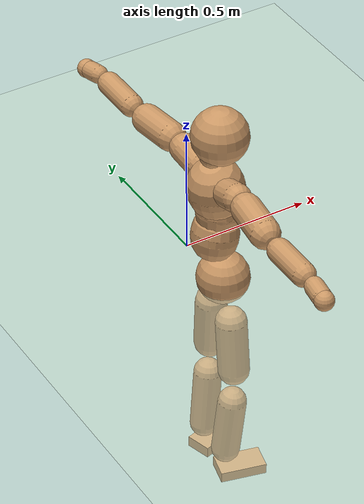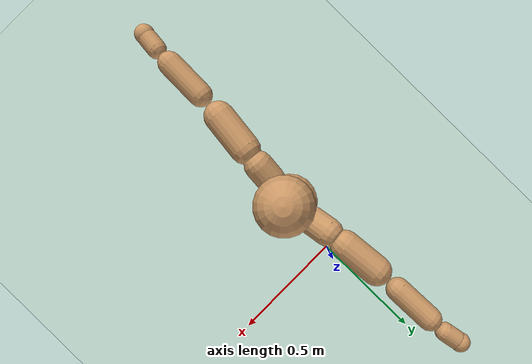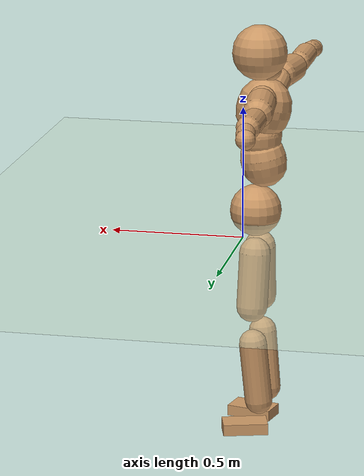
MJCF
<mujoco model="humanoid">
  <compiler coordinate="local"/>
  <default>
    <joint damping="0.0" armature="0.01" stiffness="0.0" limited="true"/>
    <geom conaffinity="1" condim="3" contype="7" margin="0.001" rgba="0.8 0.6 .4 1"/>
  </default>
  <asset>
    <texture type="skybox" builtin="gradient" rgb1=".4 .5 .6" rgb2="0 0 0" width="100" height="100"/>
    <texture builtin="flat" height="1278" mark="cross" markrgb="1 1 1" name="texgeom" random="0.01" rgb1="0.8 0.6 0.4" rgb2="0.8 0.6 0.4" type="cube" width="127"/>
    <texture builtin="checker" height="100" name="texplane" rgb1="0 0 0" rgb2="0.8 0.8 0.8" type="2d" width="100"/>
    <material name="MatPlane" reflectance="0.5" shininess="1" specular="1" texrepeat="60 60" texture="texplane"/>
    <material name="geom" texture="texgeom" texuniform="true"/>
  </asset>
  <worldbody>
    <light cutoff="100" diffuse="1 1 1" dir="-0 0 -1.3" directional="true" exponent="1" pos="0 0 1.3" specular=".1 .1 .1"/>
    <geom conaffinity="1" condim="3" name="floor" pos="0 0 0" rgba="0.8 0.9 0.8 1" size="100 100 .2" type="plane" material="MatPlane"/>
    <body name="Pelvis" pos="-0.0028 -0.2567 0.0356">
      <freejoint name="Pelvis"/>
      <geom type="sphere" contype="1" conaffinity="1" density="500" size="0.0999" pos="0.0000 0.0000 0.0000" name="Pelvis"/>
      <body name="L_Hip" pos="-0.0111 0.0579 -0.0825">
        <joint name="L_Hip_x" type="hinge" pos="0 0 0" axis="1 0 0" stiffness="800" damping="80" armature="0.02" range="-180.0000 180.0000"/>
        <joint name="L_Hip_y" type="hinge" pos="0 0 0" axis="0 1 0" stiffness="800" damping="80" armature="0.02" range="-180.0000 180.0000"/>
        <joint name="L_Hip_z" type="hinge" pos="0 0 0" axis="0 0 1" stiffness="800" damping="80" armature="0.02" range="-180.0000 180.0000"/>
        <geom type="capsule" contype="1" conaffinity="1" density="500" fromto="0.0022 0.0072 -0.0701 0.0086 0.0286 -0.2802" size="0.06" name="L_Hip"/>
        <body name="L_Knee" pos="0.0108 0.0358 -0.3503">
          <joint name="L_Knee_x" type="hinge" pos="0 0 0" axis="1 0 0" stiffness="800" damping="80" armature="0.02" range="-180.0000 180.0000"/>
          <joint name="L_Knee_y" type="hinge" pos="0 0 0" axis="0 1 0" stiffness="800" damping="80" armature="0.02" range="-180.0000 180.0000"/>
          <joint name="L_Knee_z" type="hinge" pos="0 0 0" axis="0 0 1" stiffness="800" damping="80" armature="0.02" range="-180.0000 180.0000"/>
          <geom type="capsule" contype="1" conaffinity="1" density="500" fromto="-0.0075 -0.0031 -0.0787 -0.0299 -0.0124 -0.3146" size="0.0537" name="L_Knee"/>
          <body name="L_Ankle" pos="-0.0374 -0.0155 -0.3933">
            <joint name="L_Ankle_x" type="hinge" pos="0 0 0" axis="1 0 0" stiffness="800" damping="80" armature="0.02" range="-180.0000 180.0000"/>
            <joint name="L_Ankle_y" type="hinge" pos="0 0 0" axis="0 1 0" stiffness="800" damping="80" armature="0.02" range="-180.0000 180.0000"/>
            <joint name="L_Ankle_z" type="hinge" pos="0 0 0" axis="0 0 1" stiffness="800" damping="80" armature="0.02" range="-180.0000 180.0000"/>
            <geom type="box" contype="1" conaffinity="1" density="500" pos="0.0598 0.0171 -0.0281" size="0.0871 0.0487 0.0222" quat="0.9903 0.0000 0.0000 0.1389" name="L_Ankle"/>
            <body name="L_Toe" pos="0.1196 0.0342 -0.0563">
              <joint name="L_Toe_x" type="hinge" pos="0 0 0" axis="1 0 0" stiffness="500" damping="50" armature="0.02" range="-180.0000 180.0000"/>
              <joint name="L_Toe_y" type="hinge" pos="0 0 0" axis="0 1 0" stiffness="500" damping="50" armature="0.02" range="-180.0000 180.0000"/>
              <joint name="L_Toe_z" type="hinge" pos="0 0 0" axis="0 0 1" stiffness="500" damping="50" armature="0.02" range="-180.0000 180.0000"/>
              <geom type="box" contype="1" conaffinity="1" density="500" pos="0.0000 0.0000 0.0273" size="0.001 0.0024 0.0011" quat="0.9895 0.0000 0.0000 0.1442" name="L_Toe"/>
            </body>
          </body>
        </body>
      </body>
      <body name="R_Hip" pos="-0.0058 -0.0591 -0.0916">
        <joint name="R_Hip_x" type="hinge" pos="0 0 0" axis="1 0 0" stiffness="800" damping="80" armature="0.02" range="-180.0000 180.0000"/>
        <joint name="R_Hip_y" type="hinge" pos="0 0 0" axis="0 1 0" stiffness="800" damping="80" armature="0.02" range="-180.0000 180.0000"/>
        <joint name="R_Hip_z" type="hinge" pos="0 0 0" axis="0 0 1" stiffness="800" damping="80" armature="0.02" range="-180.0000 180.0000"/>
        <geom type="capsule" contype="1" conaffinity="1" density="500" fromto="-0.0002 -0.0072 -0.0698 -0.0007 -0.0290 -0.2793" size="0.0596" name="R_Hip"/>
        <body name="R_Knee" pos="-0.0009 -0.0362 -0.3492">
          <joint name="R_Knee_x" type="hinge" pos="0 0 0" axis="1 0 0" stiffness="800" damping="80" armature="0.02" range="-180.0000 180.0000"/>
          <joint name="R_Knee_y" type="hinge" pos="0 0 0" axis="0 1 0" stiffness="800" damping="80" armature="0.02" range="-180.0000 180.0000"/>
          <joint name="R_Knee_z" type="hinge" pos="0 0 0" axis="0 0 1" stiffness="800" damping="80" armature="0.02" range="-180.0000 180.0000"/>
          <geom type="capsule" contype="1" conaffinity="1" density="500" fromto="-0.0069 0.0038 -0.0772 -0.0276 0.0150 -0.3090" size="0.054" name="R_Knee"/>
          <body name="R_Ankle" pos="-0.0345 0.0188 -0.3862">
            <joint name="R_Ankle_x" type="hinge" pos="0 0 0" axis="1 0 0" stiffness="800" damping="80" armature="0.02" range="-180.0000 180.0000"/>
            <joint name="R_Ankle_y" type="hinge" pos="0 0 0" axis="0 1 0" stiffness="800" damping="80" armature="0.02" range="-180.0000 180.0000"/>
            <joint name="R_Ankle_z" type="hinge" pos="0 0 0" axis="0 0 1" stiffness="800" damping="80" armature="0.02" range="-180.0000 180.0000"/>
            <geom type="box" contype="1" conaffinity="1" density="500" pos="0.0637 -0.0156 -0.0284" size="0.0885 0.0504 0.0213" quat="0.9928 0.0000 0.0000 -0.1195" name="R_Ankle"/>
            <body name="R_Toe" pos="0.1275 -0.0311 -0.0568">
              <joint name="R_Toe_x" type="hinge" pos="0 0 0" axis="1 0 0" stiffness="500" damping="50" armature="0.02" range="-180.0000 180.0000"/>
              <joint name="R_Toe_y" type="hinge" pos="0 0 0" axis="0 1 0" stiffness="500" damping="50" armature="0.02" range="-180.0000 180.0000"/>
              <joint name="R_Toe_z" type="hinge" pos="0 0 0" axis="0 0 1" stiffness="500" damping="50" armature="0.02" range="-180.0000 180.0000"/>
              <geom type="box" contype="1" conaffinity="1" density="500" pos="0.0000 0.0000 0.0288" size="0.0011 0.0025 0.0011" quat="0.9939 0.0000 0.0000 -0.1105" name="R_Toe"/>
            </body>
          </body>
        </body>
      </body>
      <body name="Torso" pos="-0.0434 0.0041 0.1295">
        <joint name="Torso_x" type="hinge" pos="0 0 0" axis="1 0 0" stiffness="1000" damping="100" armature="0.02" range="-180.0000 180.0000"/>
        <joint name="Torso_y" type="hinge" pos="0 0 0" axis="0 1 0" stiffness="1000" damping="100" armature="0.02" range="-180.0000 180.0000"/>
        <joint name="Torso_z" type="hinge" pos="0 0 0" axis="0 0 1" stiffness="1000" damping="100" armature="0.02" range="-180.0000 180.0000"/>
        <geom type="capsule" contype="1" conaffinity="1" density="500" fromto="0.0157 0.0035 0.0854 0.0105 0.0024 0.0569" size="0.0881" name="Torso"/>
        <body name="Spine" pos="0.0261 0.0059 0.1423">
          <joint name="Spine_x" type="hinge" pos="0 0 0" axis="1 0 0" stiffness="1000" damping="100" armature="0.02" range="-180.0000 180.0000"/>
          <joint name="Spine_y" type="hinge" pos="0 0 0" axis="0 1 0" stiffness="1000" damping="100" armature="0.02" range="-180.0000 180.0000"/>
          <joint name="Spine_z" type="hinge" pos="0 0 0" axis="0 0 1" stiffness="1000" damping="100" armature="0.02" range="-180.0000 180.0000"/>
          <geom type="capsule" contype="1" conaffinity="1" density="500" fromto="0.0027 -0.0013 0.0347 0.0018 -0.0008 0.0231" size="0.0851" name="Spine"/>
          <body name="Chest" pos="0.0044 -0.0021 0.0579">
            <joint name="Chest_x" type="hinge" pos="0 0 0" axis="1 0 0" stiffness="1000" damping="100" armature="0.02" range="-180.0000 180.0000"/>
            <joint name="Chest_y" type="hinge" pos="0 0 0" axis="0 1 0" stiffness="1000" damping="100" armature="0.02" range="-180.0000 180.0000"/>
            <joint name="Chest_z" type="hinge" pos="0 0 0" axis="0 0 1" stiffness="1000" damping="100" armature="0.02" range="-180.0000 180.0000"/>
            <geom type="capsule" contype="1" conaffinity="1" density="500" fromto="-0.0198 -0.0048 0.0876 -0.0132 -0.0032 0.0584" size="0.1048" name="Chest"/>
            <body name="Neck" pos="-0.0462 -0.0126 0.2104">
              <joint name="Neck_x" type="hinge" pos="0 0 0" axis="1 0 0" stiffness="500" damping="50" armature="0.02" range="-180.0000 180.0000"/>
              <joint name="Neck_y" type="hinge" pos="0 0 0" axis="0 1 0" stiffness="500" damping="50" armature="0.02" range="-180.0000 180.0000"/>
              <joint name="Neck_z" type="hinge" pos="0 0 0" axis="0 0 1" stiffness="500" damping="50" armature="0.02" range="-180.0000 180.0000"/>
              <geom type="capsule" contype="1" conaffinity="1" density="500" fromto="0.0092 0.0019 0.0158 0.0367 0.0076 0.0632" size="0.0462" name="Neck"/>
              <body name="Head" pos="0.0459 0.0095 0.079">
                <joint name="Head_x" type="hinge" pos="0 0 0" axis="1 0 0" stiffness="500" damping="50" armature="0.02" range="-180.0000 180.0000"/>
                <joint name="Head_y" type="hinge" pos="0 0 0" axis="0 1 0" stiffness="500" damping="50" armature="0.02" range="-180.0000 180.0000"/>
                <joint name="Head_z" type="hinge" pos="0 0 0" axis="0 0 1" stiffness="500" damping="50" armature="0.02" range="-180.0000 180.0000"/>
                <geom type="sphere" contype="1" conaffinity="1" density="500" size="0.1054" pos="0.0000 0.0000 0.0000" name="Head"/>
              </body>
            </body>
            <body name="L_Thorax" pos="-0.0244 0.0714 0.1146">
              <joint name="L_Thorax_x" type="hinge" pos="0 0 0" axis="1 0 0" stiffness="500" damping="50" armature="0.02" range="-180.0000 180.0000"/>
              <joint name="L_Thorax_y" type="hinge" pos="0 0 0" axis="0 1 0" stiffness="500" damping="50" armature="0.02" range="-180.0000 180.0000"/>
              <joint name="L_Thorax_z" type="hinge" pos="0 0 0" axis="0 0 1" stiffness="500" damping="50" armature="0.02" range="-180.0000 180.0000"/>
              <geom type="capsule" contype="1" conaffinity="1" density="500" fromto="-0.0042 0.0249 0.0083 -0.0167 0.0996 0.0330" size="0.0533" name="L_Thorax"/>
              <body name="L_Shoulder" pos="-0.0208 0.1246 0.0413">
                <joint name="L_Shoulder_x" type="hinge" pos="0 0 0" axis="1 0 0" stiffness="500" damping="50" armature="0.02" range="-720.0000 720.0000"/>
                <joint name="L_Shoulder_y" type="hinge" pos="0 0 0" axis="0 1 0" stiffness="500" damping="50" armature="0.02" range="-720.0000 720.0000"/>
                <joint name="L_Shoulder_z" type="hinge" pos="0 0 0" axis="0 0 1" stiffness="500" damping="50" armature="0.02" range="-720.0000 720.0000"/>
                <geom type="capsule" contype="1" conaffinity="1" density="500" fromto="-0.0046 0.0481 -0.0020 -0.0184 0.1924 -0.0079" size="0.0552" name="L_Shoulder"/>
                <body name="L_Elbow" pos="-0.023 0.2405 -0.0099">
                  <joint name="L_Elbow_x" type="hinge" pos="0 0 0" axis="1 0 0" stiffness="500" damping="50" armature="0.02" range="-720.0000 720.0000"/>
                  <joint name="L_Elbow_y" type="hinge" pos="0 0 0" axis="0 1 0" stiffness="500" damping="50" armature="0.02" range="-720.0000 720.0000"/>
                  <joint name="L_Elbow_z" type="hinge" pos="0 0 0" axis="0 0 1" stiffness="500" damping="50" armature="0.02" range="-720.0000 720.0000"/>
                  <geom type="capsule" contype="1" conaffinity="1" density="500" fromto="-0.0015 0.0512 0.0023 -0.0061 0.2047 0.0092" size="0.0432" name="L_Elbow"/>
                  <body name="L_Wrist" pos="-0.0076 0.2559 0.0115">
                    <joint name="L_Wrist_x" type="hinge" pos="0 0 0" axis="1 0 0" stiffness="300" damping="30" armature="0.02" range="-180.0000 180.0000"/>
                    <joint name="L_Wrist_y" type="hinge" pos="0 0 0" axis="0 1 0" stiffness="300" damping="30" armature="0.02" range="-180.0000 180.0000"/>
                    <joint name="L_Wrist_z" type="hinge" pos="0 0 0" axis="0 0 1" stiffness="300" damping="30" armature="0.02" range="-180.0000 180.0000"/>
                    <geom type="capsule" contype="1" conaffinity="1" density="500" fromto="-0.0030 0.0172 -0.0021 -0.0122 0.0688 -0.0082" size="0.0343" name="L_Wrist"/>
                    <body name="L_Hand" pos="-0.0152 0.086 -0.0103">
                      <joint name="L_Hand_x" type="hinge" pos="0 0 0" axis="1 0 0" stiffness="300" damping="30" armature="0.02" range="-180.0000 180.0000"/>
                      <joint name="L_Hand_y" type="hinge" pos="0 0 0" axis="0 1 0" stiffness="300" damping="30" armature="0.02" range="-180.0000 180.0000"/>
                      <joint name="L_Hand_z" type="hinge" pos="0 0 0" axis="0 0 1" stiffness="300" damping="30" armature="0.02" range="-180.0000 180.0000"/>
                      <geom type="sphere" contype="1" conaffinity="1" density="500" size="0.0354" pos="0.0000 0.0000 0.0000" name="L_Hand"/>
                    </body>
                  </body>
                </body>
              </body>
            </body>
            <body name="R_Thorax" pos="-0.0282 -0.0828 0.1128">
              <joint name="R_Thorax_x" type="hinge" pos="0 0 0" axis="1 0 0" stiffness="500" damping="50" armature="0.02" range="-180.0000 180.0000"/>
              <joint name="R_Thorax_y" type="hinge" pos="0 0 0" axis="0 1 0" stiffness="500" damping="50" armature="0.02" range="-180.0000 180.0000"/>
              <joint name="R_Thorax_z" type="hinge" pos="0 0 0" axis="0 0 1" stiffness="500" damping="50" armature="0.02" range="-180.0000 180.0000"/>
              <geom type="capsule" contype="1" conaffinity="1" density="500" fromto="-0.0020 -0.0228 0.0084 -0.0082 -0.0914 0.0334" size="0.0531" name="R_Thorax"/>
              <body name="R_Shoulder" pos="-0.0102 -0.1142 0.0418">
                <joint name="R_Shoulder_x" type="hinge" pos="0 0 0" axis="1 0 0" stiffness="500" damping="50" armature="0.02" range="-720.0000 720.0000"/>
                <joint name="R_Shoulder_y" type="hinge" pos="0 0 0" axis="0 1 0" stiffness="500" damping="50" armature="0.02" range="-720.0000 720.0000"/>
                <joint name="R_Shoulder_z" type="hinge" pos="0 0 0" axis="0 0 1" stiffness="500" damping="50" armature="0.02" range="-720.0000 720.0000"/>
                <geom type="capsule" contype="1" conaffinity="1" density="500" fromto="-0.0061 -0.0494 -0.0012 -0.0243 -0.1978 -0.0047" size="0.0556" name="R_Shoulder"/>
                <body name="R_Elbow" pos="-0.0304 -0.2472 -0.0058">
                  <joint name="R_Elbow_x" type="hinge" pos="0 0 0" axis="1 0 0" stiffness="500" damping="50" armature="0.02" range="-720.0000 720.0000"/>
                  <joint name="R_Elbow_y" type="hinge" pos="0 0 0" axis="0 1 0" stiffness="500" damping="50" armature="0.02" range="-720.0000 720.0000"/>
                  <joint name="R_Elbow_z" type="hinge" pos="0 0 0" axis="0 0 1" stiffness="500" damping="50" armature="0.02" range="-720.0000 720.0000"/>
                  <geom type="capsule" contype="1" conaffinity="1" density="500" fromto="-0.0012 -0.0514 0.0011 -0.0048 -0.2057 0.0045" size="0.0437" name="R_Elbow"/>
                  <body name="R_Wrist" pos="-0.006 -0.2571 0.0057">
                    <joint name="R_Wrist_x" type="hinge" pos="0 0 0" axis="1 0 0" stiffness="300" damping="30" armature="0.02" range="-180.0000 180.0000"/>
                    <joint name="R_Wrist_y" type="hinge" pos="0 0 0" axis="0 1 0" stiffness="300" damping="30" armature="0.02" range="-180.0000 180.0000"/>
                    <joint name="R_Wrist_z" type="hinge" pos="0 0 0" axis="0 0 1" stiffness="300" damping="30" armature="0.02" range="-180.0000 180.0000"/>
                    <geom type="capsule" contype="1" conaffinity="1" density="500" fromto="-0.0020 -0.0177 -0.0017 -0.0078 -0.0709 -0.0069" size="0.0351" name="R_Wrist"/>
                    <body name="R_Hand" pos="-0.0098 -0.0886 -0.0086">
                      <joint name="R_Hand_x" type="hinge" pos="0 0 0" axis="1 0 0" stiffness="300" damping="30" armature="0.02" range="-180.0000 180.0000"/>
                      <joint name="R_Hand_y" type="hinge" pos="0 0 0" axis="0 1 0" stiffness="300" damping="30" armature="0.02" range="-180.0000 180.0000"/>
                      <joint name="R_Hand_z" type="hinge" pos="0 0 0" axis="0 0 1" stiffness="300" damping="30" armature="0.02" range="-180.0000 180.0000"/>
                      <geom type="sphere" contype="1" conaffinity="1" density="500" size="0.0361" pos="0.0000 0.0000 0.0000" name="R_Hand"/>
                    </body>
                  </body>
                </body>
              </body>
            </body>
          </body>
        </body>
      </body>
    </body>
  </worldbody>
  <actuator>
    <motor name="L_Hip_x" joint="L_Hip_x" gear="500"/>
    <motor name="L_Hip_y" joint="L_Hip_y" gear="500"/>
    <motor name="L_Hip_z" joint="L_Hip_z" gear="500"/>
    <motor name="L_Knee_x" joint="L_Knee_x" gear="500"/>
    <motor name="L_Knee_y" joint="L_Knee_y" gear="500"/>
    <motor name="L_Knee_z" joint="L_Knee_z" gear="500"/>
    <motor name="L_Ankle_x" joint="L_Ankle_x" gear="500"/>
    <motor name="L_Ankle_y" joint="L_Ankle_y" gear="500"/>
    <motor name="L_Ankle_z" joint="L_Ankle_z" gear="500"/>
    <motor name="L_Toe_x" joint="L_Toe_x" gear="500"/>
    <motor name="L_Toe_y" joint="L_Toe_y" gear="500"/>
    <motor name="L_Toe_z" joint="L_Toe_z" gear="500"/>
    <motor name="R_Hip_x" joint="R_Hip_x" gear="500"/>
    <motor name="R_Hip_y" joint="R_Hip_y" gear="500"/>
    <motor name="R_Hip_z" joint="R_Hip_z" gear="500"/>
    <motor name="R_Knee_x" joint="R_Knee_x" gear="500"/>
    <motor name="R_Knee_y" joint="R_Knee_y" gear="500"/>
    <motor name="R_Knee_z" joint="R_Knee_z" gear="500"/>
    <motor name="R_Ankle_x" joint="R_Ankle_x" gear="500"/>
    <motor name="R_Ankle_y" joint="R_Ankle_y" gear="500"/>
    <motor name="R_Ankle_z" joint="R_Ankle_z" gear="500"/>
    <motor name="R_Toe_x" joint="R_Toe_x" gear="500"/>
    <motor name="R_Toe_y" joint="R_Toe_y" gear="500"/>
    <motor name="R_Toe_z" joint="R_Toe_z" gear="500"/>
    <motor name="Torso_x" joint="Torso_x" gear="500"/>
    <motor name="Torso_y" joint="Torso_y" gear="500"/>
    <motor name="Torso_z" joint="Torso_z" gear="500"/>
    <motor name="Spine_x" joint="Spine_x" gear="500"/>
    <motor name="Spine_y" joint="Spine_y" gear="500"/>
    <motor name="Spine_z" joint="Spine_z" gear="500"/>
    <motor name="Chest_x" joint="Chest_x" gear="500"/>
    <motor name="Chest_y" joint="Chest_y" gear="500"/>
    <motor name="Chest_z" joint="Chest_z" gear="500"/>
    <motor name="Neck_x" joint="Neck_x" gear="500"/>
    <motor name="Neck_y" joint="Neck_y" gear="500"/>
    <motor name="Neck_z" joint="Neck_z" gear="500"/>
    <motor name="Head_x" joint="Head_x" gear="500"/>
    <motor name="Head_y" joint="Head_y" gear="500"/>
    <motor name="Head_z" joint="Head_z" gear="500"/>
    <motor name="L_Thorax_x" joint="L_Thorax_x" gear="500"/>
    <motor name="L_Thorax_y" joint="L_Thorax_y" gear="500"/>
    <motor name="L_Thorax_z" joint="L_Thorax_z" gear="500"/>
    <motor name="L_Shoulder_x" joint="L_Shoulder_x" gear="500"/>
    <motor name="L_Shoulder_y" joint="L_Shoulder_y" gear="500"/>
    <motor name="L_Shoulder_z" joint="L_Shoulder_z" gear="500"/>
    <motor name="L_Elbow_x" joint="L_Elbow_x" gear="500"/>
    <motor name="L_Elbow_y" joint="L_Elbow_y" gear="500"/>
    <motor name="L_Elbow_z" joint="L_Elbow_z" gear="500"/>
    <motor name="L_Wrist_x" joint="L_Wrist_x" gear="500"/>
    <motor name="L_Wrist_y" joint="L_Wrist_y" gear="500"/>
    <motor name="L_Wrist_z" joint="L_Wrist_z" gear="500"/>
    <motor name="L_Hand_x" joint="L_Hand_x" gear="500"/>
    <motor name="L_Hand_y" joint="L_Hand_y" gear="500"/>
    <motor name="L_Hand_z" joint="L_Hand_z" gear="500"/>
    <motor name="R_Thorax_x" joint="R_Thorax_x" gear="500"/>
    <motor name="R_Thorax_y" joint="R_Thorax_y" gear="500"/>
    <motor name="R_Thorax_z" joint="R_Thorax_z" gear="500"/>
    <motor name="R_Shoulder_x" joint="R_Shoulder_x" gear="500"/>
    <motor name="R_Shoulder_y" joint="R_Shoulder_y" gear="500"/>
    <motor name="R_Shoulder_z" joint="R_Shoulder_z" gear="500"/>
    <motor name="R_Elbow_x" joint="R_Elbow_x" gear="500"/>
    <motor name="R_Elbow_y" joint="R_Elbow_y" gear="500"/>
    <motor name="R_Elbow_z" joint="R_Elbow_z" gear="500"/>
    <motor name="R_Wrist_x" joint="R_Wrist_x" gear="500"/>
    <motor name="R_Wrist_y" joint="R_Wrist_y" gear="500"/>
    <motor name="R_Wrist_z" joint="R_Wrist_z" gear="500"/>
    <motor name="R_Hand_x" joint="R_Hand_x" gear="500"/>
    <motor name="R_Hand_y" joint="R_Hand_y" gear="500"/>
    <motor name="R_Hand_z" joint="R_Hand_z" gear="500"/>
  </actuator>
  <contact>
    <exclude body1="Torso" body2="Chest"/>
    <exclude body1="Head" body2="Chest"/>
    <exclude body1="R_Knee" body2="R_Toe"/>
    <exclude body1="R_Knee" body2="L_Ankle"/>
    <exclude body1="R_Knee" body2="L_Toe"/>
    <exclude body1="L_Knee" body2="L_Toe"/>
    <exclude body1="L_Knee" body2="R_Ankle"/>
    <exclude body1="L_Knee" body2="R_Toe"/>
    <exclude body1="L_Shoulder" body2="Chest"/>
    <exclude body1="R_Shoulder" body2="Chest"/>
  </contact>
  <sensor/>
  <size njmax="700" nconmax="700"/>
</mujoco>
